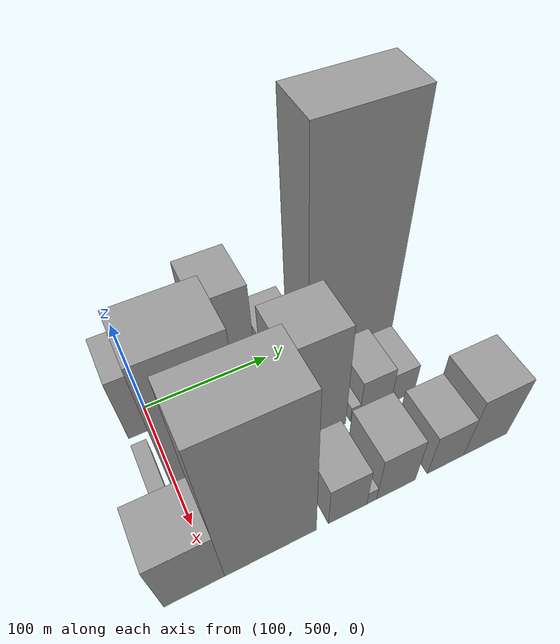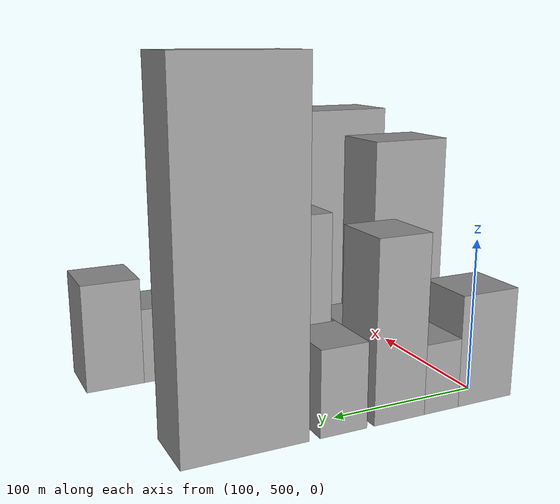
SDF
<sdf version="1.6">
 <world name="default">
  <model name="building_39">
   <static>1</static>
   <pose>100.0000 502.6495 0 0.000000 0.000000 0.000000</pose>
   <link name="link">
    <pose>0 0 36.00 0 0 0</pose>
    <collision name="collision"><geometry><box><size>40.0000 41.1744 72.0000</size></box></geometry></collision>
    <visual name="visual">
     <cast_shadows>0</cast_shadows>
     <geometry><box><size>40.0000 41.1744 72.0000</size></box></geometry>
     <material>
      <script>
       <uri>model://grey_wall/materials/scripts</uri>
       <uri>model://grey_wall/materials/textures</uri>
       <name>vrc/grey_wall</name>
      </script>
     </material>
    </visual>
   </link>
  </model>
  <model name="building_40">
   <static>1</static>
   <pose>100.0000 535.8775 0 0.000000 0.000000 0.000000</pose>
   <link name="link">
    <pose>0 0 22.50 0 0 0</pose>
    <collision name="collision"><geometry><box><size>40.0000 25.2815 45.0000</size></box></geometry></collision>
    <visual name="visual">
     <cast_shadows>0</cast_shadows>
     <geometry><box><size>40.0000 25.2815 45.0000</size></box></geometry>
     <material>
      <script>
       <uri>model://grey_wall/materials/scripts</uri>
       <uri>model://grey_wall/materials/textures</uri>
       <name>vrc/grey_wall</name>
      </script>
     </material>
    </visual>
   </link>
  </model>
  <model name="building_41">
   <static>1</static>
   <pose>100.0000 566.3018 0 0.000000 0.000000 0.000000</pose>
   <link name="link">
    <pose>0 0 57.00 0 0 0</pose>
    <collision name="collision"><geometry><box><size>40.0000 35.5671 114.0000</size></box></geometry></collision>
    <visual name="visual">
     <cast_shadows>0</cast_shadows>
     <geometry><box><size>40.0000 35.5671 114.0000</size></box></geometry>
     <material>
      <script>
       <uri>model://grey_wall/materials/scripts</uri>
       <uri>model://grey_wall/materials/textures</uri>
       <name>vrc/grey_wall</name>
      </script>
     </material>
    </visual>
   </link>
  </model>
  <model name="building_42">
   <static>1</static>
   <pose>100.0000 604.6033 0 0.000000 0.000000 0.000000</pose>
   <link name="link">
    <pose>0 0 27.00 0 0 0</pose>
    <collision name="collision"><geometry><box><size>40.0000 31.0360 54.0000</size></box></geometry></collision>
    <visual name="visual">
     <cast_shadows>0</cast_shadows>
     <geometry><box><size>40.0000 31.0360 54.0000</size></box></geometry>
     <material>
      <script>
       <uri>model://grey_wall/materials/scripts</uri>
       <uri>model://grey_wall/materials/textures</uri>
       <name>vrc/grey_wall</name>
      </script>
     </material>
    </visual>
   </link>
  </model>
  <model name="building_43">
   <static>1</static>
   <pose>100.0000 665.5144 0 0.000000 0.000000 0.000000</pose>
   <link name="link">
    <pose>0 0 108.00 0 0 0</pose>
    <collision name="collision"><geometry><box><size>40.0000 76.7862 216.0000</size></box></geometry></collision>
    <visual name="visual">
     <cast_shadows>0</cast_shadows>
     <geometry><box><size>40.0000 76.7862 216.0000</size></box></geometry>
     <material>
      <script>
       <uri>model://grey_wall/materials/scripts</uri>
       <uri>model://grey_wall/materials/textures</uri>
       <name>vrc/grey_wall</name>
      </script>
     </material>
    </visual>
   </link>
  </model>
  <model name="building_85">
   <static>1</static>
   <pose>160.0000 488.1386 0 0.000000 0.000000 0.000000</pose>
   <link name="link">
    <pose>0 0 12.00 0 0 0</pose>
    <collision name="collision"><geometry><box><size>40.0000 10.8820 24.0000</size></box></geometry></collision>
    <visual name="visual">
     <cast_shadows>0</cast_shadows>
     <geometry><box><size>40.0000 10.8820 24.0000</size></box></geometry>
     <material>
      <script>
       <uri>model://grey_wall/materials/scripts</uri>
       <uri>model://grey_wall/materials/textures</uri>
       <name>vrc/grey_wall</name>
      </script>
     </material>
    </visual>
   </link>
  </model>
  <model name="building_86">
   <static>1</static>
   <pose>160.0000 523.9547 0 0.000000 0.000000 0.000000</pose>
   <link name="link">
    <pose>0 0 79.50 0 0 0</pose>
    <collision name="collision"><geometry><box><size>40.0000 52.7502 159.0000</size></box></geometry></collision>
    <visual name="visual">
     <cast_shadows>0</cast_shadows>
     <geometry><box><size>40.0000 52.7502 159.0000</size></box></geometry>
     <material>
      <script>
       <uri>model://grey_wall/materials/scripts</uri>
       <uri>model://grey_wall/materials/textures</uri>
       <name>vrc/grey_wall</name>
      </script>
     </material>
    </visual>
   </link>
  </model>
  <model name="building_87">
   <static>1</static>
   <pose>160.0000 561.3710 0 0.000000 0.000000 0.000000</pose>
   <link name="link">
    <pose>0 0 21.00 0 0 0</pose>
    <collision name="collision"><geometry><box><size>40.0000 22.0824 42.0000</size></box></geometry></collision>
    <visual name="visual">
     <cast_shadows>0</cast_shadows>
     <geometry><box><size>40.0000 22.0824 42.0000</size></box></geometry>
     <material>
      <script>
       <uri>model://grey_wall/materials/scripts</uri>
       <uri>model://grey_wall/materials/textures</uri>
       <name>vrc/grey_wall</name>
      </script>
     </material>
    </visual>
   </link>
  </model>
  <model name="building_88">
   <static>1</static>
   <pose>160.0000 576.6413 0 0.000000 0.000000 0.000000</pose>
   <link name="link">
    <pose>0 0 9.00 0 0 0</pose>
    <collision name="collision"><geometry><box><size>40.0000 8.4582 18.0000</size></box></geometry></collision>
    <visual name="visual">
     <cast_shadows>0</cast_shadows>
     <geometry><box><size>40.0000 8.4582 18.0000</size></box></geometry>
     <material>
      <script>
       <uri>model://grey_wall/materials/scripts</uri>
       <uri>model://grey_wall/materials/textures</uri>
       <name>vrc/grey_wall</name>
      </script>
     </material>
    </visual>
   </link>
  </model>
  <model name="building_89">
   <static>1</static>
   <pose>160.0000 603.9337 0 0.000000 0.000000 0.000000</pose>
   <link name="link">
    <pose>0 0 58.50 0 0 0</pose>
    <collision name="collision"><geometry><box><size>40.0000 46.1266 117.0000</size></box></geometry></collision>
    <visual name="visual">
     <cast_shadows>0</cast_shadows>
     <geometry><box><size>40.0000 46.1266 117.0000</size></box></geometry>
     <material>
      <script>
       <uri>model://grey_wall/materials/scripts</uri>
       <uri>model://grey_wall/materials/textures</uri>
       <name>vrc/grey_wall</name>
      </script>
     </material>
    </visual>
   </link>
  </model>
  <model name="building_90">
   <static>1</static>
   <pose>160.0000 634.9736 0 0.000000 0.000000 0.000000</pose>
   <link name="link">
    <pose>0 0 9.00 0 0 0</pose>
    <collision name="collision"><geometry><box><size>40.0000 7.9532 18.0000</size></box></geometry></collision>
    <visual name="visual">
     <cast_shadows>0</cast_shadows>
     <geometry><box><size>40.0000 7.9532 18.0000</size></box></geometry>
     <material>
      <script>
       <uri>model://grey_wall/materials/scripts</uri>
       <uri>model://grey_wall/materials/textures</uri>
       <name>vrc/grey_wall</name>
      </script>
     </material>
    </visual>
   </link>
  </model>
  <model name="building_91">
   <static>1</static>
   <pose>160.0000 652.3972 0 0.000000 0.000000 0.000000</pose>
   <link name="link">
    <pose>0 0 22.50 0 0 0</pose>
    <collision name="collision"><geometry><box><size>40.0000 26.8939 45.0000</size></box></geometry></collision>
    <visual name="visual">
     <cast_shadows>0</cast_shadows>
     <geometry><box><size>40.0000 26.8939 45.0000</size></box></geometry>
     <material>
      <script>
       <uri>model://grey_wall/materials/scripts</uri>
       <uri>model://grey_wall/materials/textures</uri>
       <name>vrc/grey_wall</name>
      </script>
     </material>
    </visual>
   </link>
  </model>
  <model name="building_92">
   <static>1</static>
   <pose>160.0000 676.0614 0 0.000000 0.000000 0.000000</pose>
   <link name="link">
    <pose>0 0 18.00 0 0 0</pose>
    <collision name="collision"><geometry><box><size>40.0000 20.4345 36.0000</size></box></geometry></collision>
    <visual name="visual">
     <cast_shadows>0</cast_shadows>
     <geometry><box><size>40.0000 20.4345 36.0000</size></box></geometry>
     <material>
      <script>
       <uri>model://grey_wall/materials/scripts</uri>
       <uri>model://grey_wall/materials/textures</uri>
       <name>vrc/grey_wall</name>
      </script>
     </material>
    </visual>
   </link>
  </model>
  <model name="building_139">
   <static>1</static>
   <pose>220.0000 486.9075 0 0.000000 0.000000 0.000000</pose>
   <link name="link">
    <pose>0 0 34.50 0 0 0</pose>
    <collision name="collision"><geometry><box><size>40.0000 39.9665 69.0000</size></box></geometry></collision>
    <visual name="visual">
     <cast_shadows>0</cast_shadows>
     <geometry><box><size>40.0000 39.9665 69.0000</size></box></geometry>
     <material>
      <script>
       <uri>model://grey_wall/materials/scripts</uri>
       <uri>model://grey_wall/materials/textures</uri>
       <name>vrc/grey_wall</name>
      </script>
     </material>
    </visual>
   </link>
  </model>
  <model name="building_140">
   <static>1</static>
   <pose>220.0000 539.2317 0 0.000000 0.000000 0.000000</pose>
   <link name="link">
    <pose>0 0 87.00 0 0 0</pose>
    <collision name="collision"><geometry><box><size>40.0000 64.6820 174.0000</size></box></geometry></collision>
    <visual name="visual">
     <cast_shadows>0</cast_shadows>
     <geometry><box><size>40.0000 64.6820 174.0000</size></box></geometry>
     <material>
      <script>
       <uri>model://grey_wall/materials/scripts</uri>
       <uri>model://grey_wall/materials/textures</uri>
       <name>vrc/grey_wall</name>
      </script>
     </material>
    </visual>
   </link>
  </model>
  <model name="building_141">
   <static>1</static>
   <pose>220.0000 595.1587 0 0.000000 0.000000 0.000000</pose>
   <link name="link">
    <pose>0 0 25.50 0 0 0</pose>
    <collision name="collision"><geometry><box><size>40.0000 29.1720 51.0000</size></box></geometry></collision>
    <visual name="visual">
     <cast_shadows>0</cast_shadows>
     <geometry><box><size>40.0000 29.1720 51.0000</size></box></geometry>
     <material>
      <script>
       <uri>model://grey_wall/materials/scripts</uri>
       <uri>model://grey_wall/materials/textures</uri>
       <name>vrc/grey_wall</name>
      </script>
     </material>
    </visual>
   </link>
  </model>
  <model name="building_142">
   <static>1</static>
   <pose>220.0000 613.5815 0 0.000000 0.000000 0.000000</pose>
   <link name="link">
    <pose>0 0 9.00 0 0 0</pose>
    <collision name="collision"><geometry><box><size>40.0000 7.6735 18.0000</size></box></geometry></collision>
    <visual name="visual">
     <cast_shadows>0</cast_shadows>
     <geometry><box><size>40.0000 7.6735 18.0000</size></box></geometry>
     <material>
      <script>
       <uri>model://grey_wall/materials/scripts</uri>
       <uri>model://grey_wall/materials/textures</uri>
       <name>vrc/grey_wall</name>
      </script>
     </material>
    </visual>
   </link>
  </model>
  <model name="building_143">
   <static>1</static>
   <pose>220.0000 632.9064 0 0.000000 0.000000 0.000000</pose>
   <link name="link">
    <pose>0 0 28.50 0 0 0</pose>
    <collision name="collision"><geometry><box><size>40.0000 30.9764 57.0000</size></box></geometry></collision>
    <visual name="visual">
     <cast_shadows>0</cast_shadows>
     <geometry><box><size>40.0000 30.9764 57.0000</size></box></geometry>
     <material>
      <script>
       <uri>model://grey_wall/materials/scripts</uri>
       <uri>model://grey_wall/materials/textures</uri>
       <name>vrc/grey_wall</name>
      </script>
     </material>
    </visual>
   </link>
  </model>
  <model name="building_144">
   <static>1</static>
   <pose>220.0000 673.5366 0 0.000000 0.000000 0.000000</pose>
   <link name="link">
    <pose>0 0 25.50 0 0 0</pose>
    <collision name="collision"><geometry><box><size>40.0000 30.2840 51.0000</size></box></geometry></collision>
    <visual name="visual">
     <cast_shadows>0</cast_shadows>
     <geometry><box><size>40.0000 30.2840 51.0000</size></box></geometry>
     <material>
      <script>
       <uri>model://grey_wall/materials/scripts</uri>
       <uri>model://grey_wall/materials/textures</uri>
       <name>vrc/grey_wall</name>
      </script>
     </material>
    </visual>
   </link>
  </model>
  <model name="building_145">
   <static>1</static>
   <pose>220.0000 707.7523 0 0.000000 0.000000 0.000000</pose>
   <link name="link">
    <pose>0 0 36.00 0 0 0</pose>
    <collision name="collision"><geometry><box><size>40.0000 38.1472 72.0000</size></box></geometry></collision>
    <visual name="visual">
     <cast_shadows>0</cast_shadows>
     <geometry><box><size>40.0000 38.1472 72.0000</size></box></geometry>
     <material>
      <script>
       <uri>model://grey_wall/materials/scripts</uri>
       <uri>model://grey_wall/materials/textures</uri>
       <name>vrc/grey_wall</name>
      </script>
     </material>
    </visual>
   </link>
  </model>
 </world>
</sdf>
